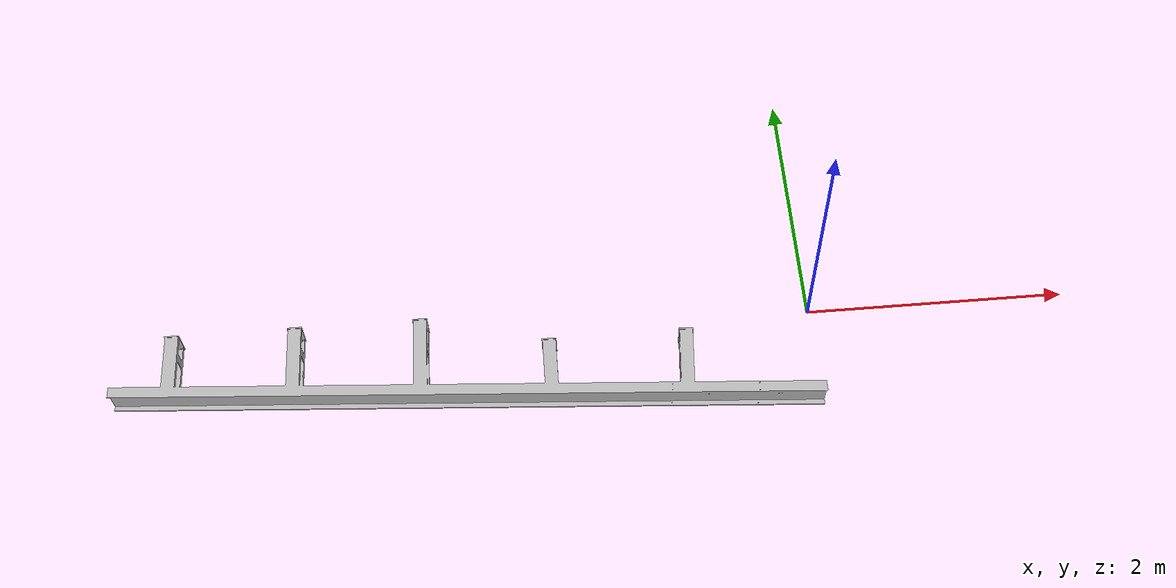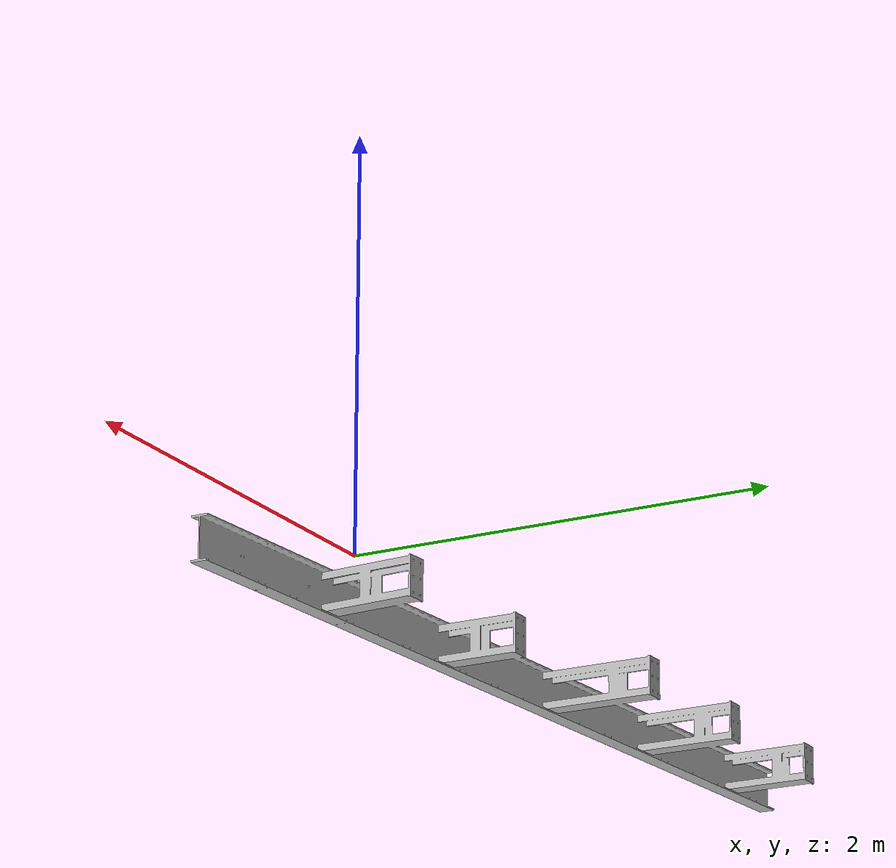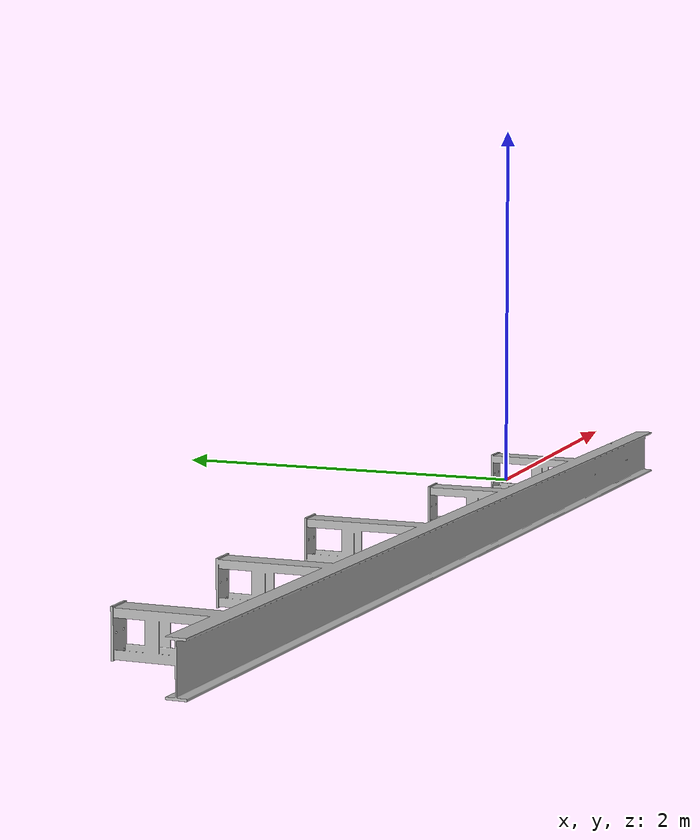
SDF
<?xml version='1.0'?>
<sdf version='1.4'>
  <model name="FGAG1002_COLUMNA1">
 <static>false</static>
 <link name="mesh_link">
   <pose>0 0 0.1 1.57 0 -1.57</pose>
	<inertial>
            <mass>10</mass>
 	</inertial>
        <visual name="visual">
        <geometry>
            <mesh><uri>model://FGAG1002_COLUMNA1/meshes/FGAG1002_COLUMNA1.stl</uri></mesh>
          </geometry>
        </visual>
        <collision name="collision">
          <geometry>
            <mesh><uri>model://FGAG1002_COLUMNA1/meshes/FGAG1002_COLUMNA1.stl</uri></mesh>
          </geometry>
        </collision>
      </link>
      <joint name='anchor' type='fixed'>
        <child>mesh_link</child>
        <parent>world</parent>
      </joint>
  </model>
</sdf>
